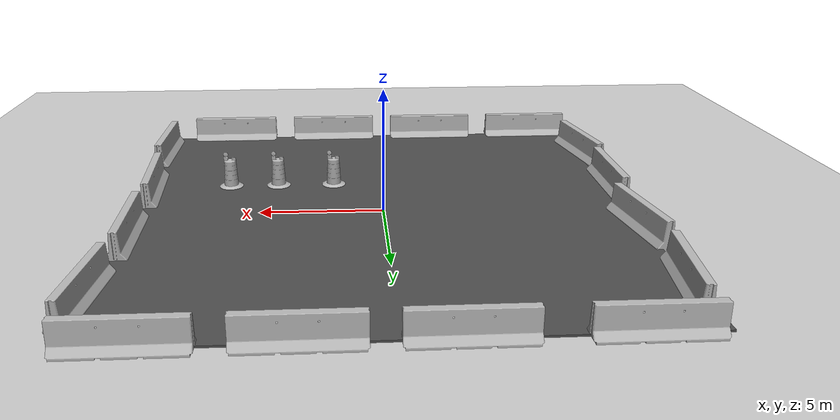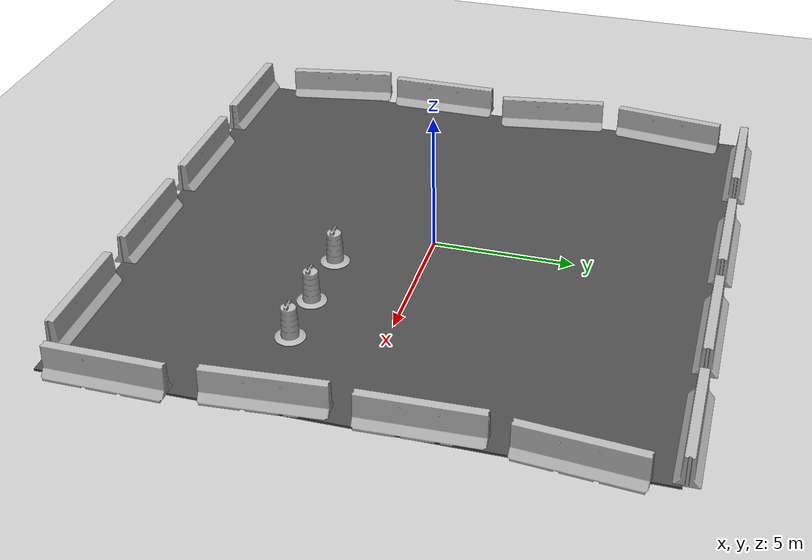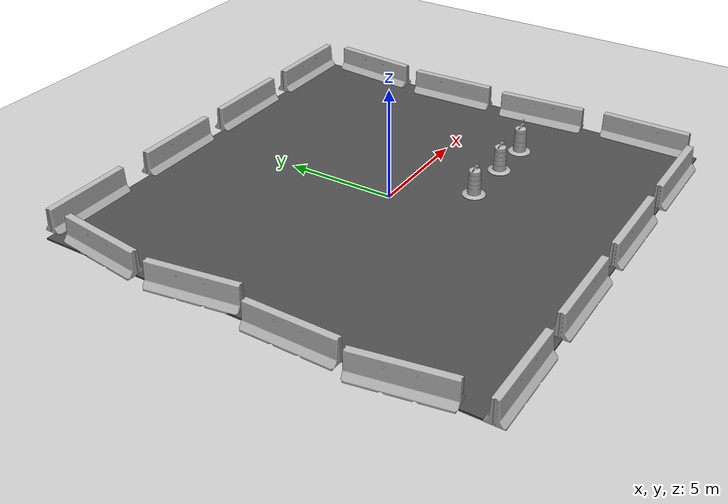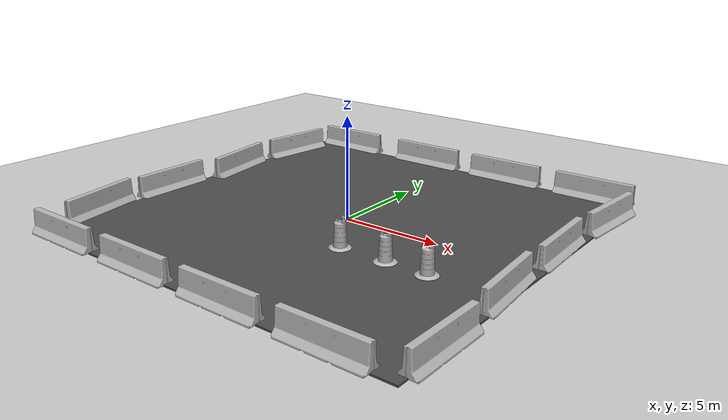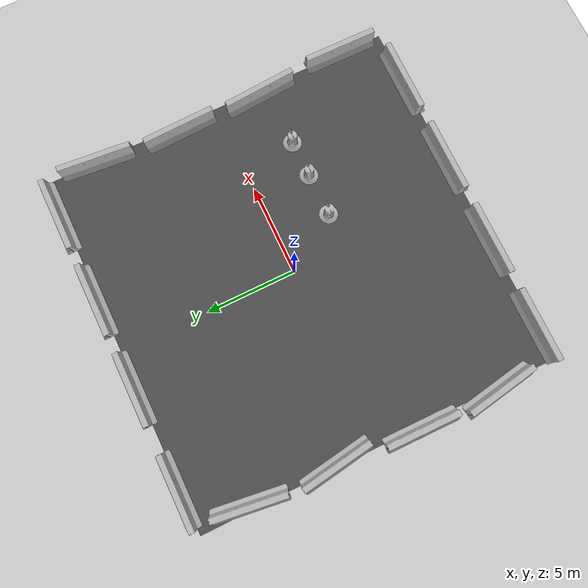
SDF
<sdf version="1.6">
 <world name="default">
  <light name="sun" type="directional">
   <pose>0 0 10 0 -0 0</pose>
   <diffuse>0.8 0.8 0.8 1</diffuse>
   <specular>0.2 0.2 0.2 1</specular>
   <attenuation>
    <range>1000</range>
    <constant>0.9</constant>
    <linear>0.01</linear>
    <quadratic>0.001</quadratic>
   </attenuation>
   <direction>-0.5 0.1 -0.9</direction>
  </light>
  <model name="ground_plane">
   <static>1</static>
   <link name="link">
    <collision name="collision">
     <geometry><plane><normal>0 0 1</normal><size>100 100</size></plane></geometry>
     <surface><friction><ode><mu>100</mu><mu2>50</mu2></ode></friction></surface>
    </collision>
    <visual name="visual">
     <cast_shadows>0</cast_shadows>
     <geometry><plane><normal>0 0 1</normal><size>100 100</size></plane></geometry>
     <material>
      <script><uri>file://media/materials/scripts/gazebo.material</uri><name>Gazebo/Grey</name></script>
     </material>
    </visual>
    <velocity_decay><linear>0</linear><angular>0</angular></velocity_decay>
   </link>
  </model>
  <physics name="default_physics" default="0" type="ode">
   <max_step_size>0.01</max_step_size>
   <real_time_factor>1</real_time_factor>
   <real_time_update_rate>100</real_time_update_rate>
  </physics>
  <scene><ambient>0.4 0.4 0.4 1</ambient><background>0.7 0.7 0.7 1</background><shadows>1</shadows></scene>
  <model name="jersey_barrier">
   <static>1</static>
   <link name="link">
    <visual name="visual">
     <geometry><mesh><uri>model://jersey_barrier/meshes/jersey_barrier.dae</uri></mesh></geometry>
    </visual>
    <collision name="upright">
     <pose>0 0 0.5715 0 -0 0</pose>
     <geometry><box><size>4.06542 0.3063 1.143</size></box></geometry>
    </collision>
    <collision name="base">
     <pose>0 0 0.032258 0 -0 0</pose>
     <geometry><box><size>4.06542 0.8107 0.064516</size></box></geometry>
    </collision>
    <collision name="base2">
     <pose>0 0 0.1 0 -0 0</pose>
     <geometry><box><size>4.06542 0.65 0.1</size></box></geometry>
    </collision>
    <collision name="base3">
     <pose>0 0 0.2 0 -0 0</pose>
     <geometry><box><size>4.06542 0.5 0.1</size></box></geometry>
    </collision>
    <collision name="left-angle">
     <pose>0 -0.224 0.2401 0.9 -0 0</pose>
     <geometry><box><size>4.06542 0.5 0.064516</size></box></geometry>
    </collision>
    <collision name="right-angle">
     <pose>0 0.224 0.2401 -0.9 0 0</pose>
     <geometry><box><size>4.06542 0.5 0.064516</size></box></geometry>
    </collision>
    <velocity_decay><linear>0</linear><angular>0</angular></velocity_decay>
   </link>
   <pose>-8 -10 0 0 -0 0</pose>
  </model>
  <model name="jersey_barrier_0">
   <static>1</static>
   <link name="link">
    <visual name="visual">
     <geometry><mesh><uri>model://jersey_barrier/meshes/jersey_barrier.dae</uri></mesh></geometry>
    </visual>
    <collision name="upright">
     <pose>0 0 0.5715 0 -0 0</pose>
     <geometry><box><size>4.06542 0.3063 1.143</size></box></geometry>
    </collision>
    <collision name="base">
     <pose>0 0 0.032258 0 -0 0</pose>
     <geometry><box><size>4.06542 0.8107 0.064516</size></box></geometry>
    </collision>
    <collision name="base2">
     <pose>0 0 0.1 0 -0 0</pose>
     <geometry><box><size>4.06542 0.65 0.1</size></box></geometry>
    </collision>
    <collision name="base3">
     <pose>0 0 0.2 0 -0 0</pose>
     <geometry><box><size>4.06542 0.5 0.1</size></box></geometry>
    </collision>
    <collision name="left-angle">
     <pose>0 -0.224 0.2401 0.9 -0 0</pose>
     <geometry><box><size>4.06542 0.5 0.064516</size></box></geometry>
    </collision>
    <collision name="right-angle">
     <pose>0 0.224 0.2401 -0.9 0 0</pose>
     <geometry><box><size>4.06542 0.5 0.064516</size></box></geometry>
    </collision>
    <velocity_decay><linear>0</linear><angular>0</angular></velocity_decay>
   </link>
   <pose>-3 -10 0 0 -0 0</pose>
  </model>
  <model name="jersey_barrier_1">
   <static>1</static>
   <link name="link">
    <visual name="visual">
     <geometry><mesh><uri>model://jersey_barrier/meshes/jersey_barrier.dae</uri></mesh></geometry>
    </visual>
    <collision name="upright">
     <pose>0 0 0.5715 0 -0 0</pose>
     <geometry><box><size>4.06542 0.3063 1.143</size></box></geometry>
    </collision>
    <collision name="base">
     <pose>0 0 0.032258 0 -0 0</pose>
     <geometry><box><size>4.06542 0.8107 0.064516</size></box></geometry>
    </collision>
    <collision name="base2">
     <pose>0 0 0.1 0 -0 0</pose>
     <geometry><box><size>4.06542 0.65 0.1</size></box></geometry>
    </collision>
    <collision name="base3">
     <pose>0 0 0.2 0 -0 0</pose>
     <geometry><box><size>4.06542 0.5 0.1</size></box></geometry>
    </collision>
    <collision name="left-angle">
     <pose>0 -0.224 0.2401 0.9 -0 0</pose>
     <geometry><box><size>4.06542 0.5 0.064516</size></box></geometry>
    </collision>
    <collision name="right-angle">
     <pose>0 0.224 0.2401 -0.9 0 0</pose>
     <geometry><box><size>4.06542 0.5 0.064516</size></box></geometry>
    </collision>
    <velocity_decay><linear>0</linear><angular>0</angular></velocity_decay>
   </link>
   <pose>2 -10 0 0 -0 0</pose>
  </model>
  <model name="jersey_barrier_2">
   <static>1</static>
   <link name="link">
    <visual name="visual">
     <geometry><mesh><uri>model://jersey_barrier/meshes/jersey_barrier.dae</uri></mesh></geometry>
    </visual>
    <collision name="upright">
     <pose>0 0 0.5715 0 -0 0</pose>
     <geometry><box><size>4.06542 0.3063 1.143</size></box></geometry>
    </collision>
    <collision name="base">
     <pose>0 0 0.032258 0 -0 0</pose>
     <geometry><box><size>4.06542 0.8107 0.064516</size></box></geometry>
    </collision>
    <collision name="base2">
     <pose>0 0 0.1 0 -0 0</pose>
     <geometry><box><size>4.06542 0.65 0.1</size></box></geometry>
    </collision>
    <collision name="base3">
     <pose>0 0 0.2 0 -0 0</pose>
     <geometry><box><size>4.06542 0.5 0.1</size></box></geometry>
    </collision>
    <collision name="left-angle">
     <pose>0 -0.224 0.2401 0.9 -0 0</pose>
     <geometry><box><size>4.06542 0.5 0.064516</size></box></geometry>
    </collision>
    <collision name="right-angle">
     <pose>0 0.224 0.2401 -0.9 0 0</pose>
     <geometry><box><size>4.06542 0.5 0.064516</size></box></geometry>
    </collision>
    <velocity_decay><linear>0</linear><angular>0</angular></velocity_decay>
   </link>
   <pose>7 -10 0 0 -0 0</pose>
  </model>
  <model name="jersey_barrier_3">
   <static>1</static>
   <link name="link">
    <visual name="visual">
     <geometry><mesh><uri>model://jersey_barrier/meshes/jersey_barrier.dae</uri></mesh></geometry>
    </visual>
    <collision name="upright">
     <pose>0 0 0.5715 0 -0 0</pose>
     <geometry><box><size>4.06542 0.3063 1.143</size></box></geometry>
    </collision>
    <collision name="base">
     <pose>0 0 0.032258 0 -0 0</pose>
     <geometry><box><size>4.06542 0.8107 0.064516</size></box></geometry>
    </collision>
    <collision name="base2">
     <pose>0 0 0.1 0 -0 0</pose>
     <geometry><box><size>4.06542 0.65 0.1</size></box></geometry>
    </collision>
    <collision name="base3">
     <pose>0 0 0.2 0 -0 0</pose>
     <geometry><box><size>4.06542 0.5 0.1</size></box></geometry>
    </collision>
    <collision name="left-angle">
     <pose>0 -0.224 0.2401 0.9 -0 0</pose>
     <geometry><box><size>4.06542 0.5 0.064516</size></box></geometry>
    </collision>
    <collision name="right-angle">
     <pose>0 0.224 0.2401 -0.9 0 0</pose>
     <geometry><box><size>4.06542 0.5 0.064516</size></box></geometry>
    </collision>
    <velocity_decay><linear>0</linear><angular>0</angular></velocity_decay>
   </link>
   <pose>-7.50675 10 0 0 -0 0</pose>
  </model>
  <model name="jersey_barrier_4">
   <static>1</static>
   <link name="link">
    <visual name="visual">
     <geometry><mesh><uri>model://jersey_barrier/meshes/jersey_barrier.dae</uri></mesh></geometry>
    </visual>
    <collision name="upright">
     <pose>0 0 0.5715 0 -0 0</pose>
     <geometry><box><size>4.06542 0.3063 1.143</size></box></geometry>
    </collision>
    <collision name="base">
     <pose>0 0 0.032258 0 -0 0</pose>
     <geometry><box><size>4.06542 0.8107 0.064516</size></box></geometry>
    </collision>
    <collision name="base2">
     <pose>0 0 0.1 0 -0 0</pose>
     <geometry><box><size>4.06542 0.65 0.1</size></box></geometry>
    </collision>
    <collision name="base3">
     <pose>0 0 0.2 0 -0 0</pose>
     <geometry><box><size>4.06542 0.5 0.1</size></box></geometry>
    </collision>
    <collision name="left-angle">
     <pose>0 -0.224 0.2401 0.9 -0 0</pose>
     <geometry><box><size>4.06542 0.5 0.064516</size></box></geometry>
    </collision>
    <collision name="right-angle">
     <pose>0 0.224 0.2401 -0.9 0 0</pose>
     <geometry><box><size>4.06542 0.5 0.064516</size></box></geometry>
    </collision>
    <velocity_decay><linear>0</linear><angular>0</angular></velocity_decay>
   </link>
   <pose>-2 10 0 0 -0 0</pose>
  </model>
  <model name="jersey_barrier_5">
   <static>1</static>
   <link name="link">
    <visual name="visual">
     <geometry><mesh><uri>model://jersey_barrier/meshes/jersey_barrier.dae</uri></mesh></geometry>
    </visual>
    <collision name="upright">
     <pose>0 0 0.5715 0 -0 0</pose>
     <geometry><box><size>4.06542 0.3063 1.143</size></box></geometry>
    </collision>
    <collision name="base">
     <pose>0 0 0.032258 0 -0 0</pose>
     <geometry><box><size>4.06542 0.8107 0.064516</size></box></geometry>
    </collision>
    <collision name="base2">
     <pose>0 0 0.1 0 -0 0</pose>
     <geometry><box><size>4.06542 0.65 0.1</size></box></geometry>
    </collision>
    <collision name="base3">
     <pose>0 0 0.2 0 -0 0</pose>
     <geometry><box><size>4.06542 0.5 0.1</size></box></geometry>
    </collision>
    <collision name="left-angle">
     <pose>0 -0.224 0.2401 0.9 -0 0</pose>
     <geometry><box><size>4.06542 0.5 0.064516</size></box></geometry>
    </collision>
    <collision name="right-angle">
     <pose>0 0.224 0.2401 -0.9 0 0</pose>
     <geometry><box><size>4.06542 0.5 0.064516</size></box></geometry>
    </collision>
    <velocity_decay><linear>0</linear><angular>0</angular></velocity_decay>
   </link>
   <pose>3 10 0 0 -0 0</pose>
  </model>
  <model name="jersey_barrier_6">
   <static>1</static>
   <link name="link">
    <visual name="visual">
     <geometry><mesh><uri>model://jersey_barrier/meshes/jersey_barrier.dae</uri></mesh></geometry>
    </visual>
    <collision name="upright">
     <pose>0 0 0.5715 0 -0 0</pose>
     <geometry><box><size>4.06542 0.3063 1.143</size></box></geometry>
    </collision>
    <collision name="base">
     <pose>0 0 0.032258 0 -0 0</pose>
     <geometry><box><size>4.06542 0.8107 0.064516</size></box></geometry>
    </collision>
    <collision name="base2">
     <pose>0 0 0.1 0 -0 0</pose>
     <geometry><box><size>4.06542 0.65 0.1</size></box></geometry>
    </collision>
    <collision name="base3">
     <pose>0 0 0.2 0 -0 0</pose>
     <geometry><box><size>4.06542 0.5 0.1</size></box></geometry>
    </collision>
    <collision name="left-angle">
     <pose>0 -0.224 0.2401 0.9 -0 0</pose>
     <geometry><box><size>4.06542 0.5 0.064516</size></box></geometry>
    </collision>
    <collision name="right-angle">
     <pose>0 0.224 0.2401 -0.9 0 0</pose>
     <geometry><box><size>4.06542 0.5 0.064516</size></box></geometry>
    </collision>
    <velocity_decay><linear>0</linear><angular>0</angular></velocity_decay>
   </link>
   <pose>8 10 0 0 -0 0</pose>
  </model>
  <model name="jersey_barrier_7">
   <static>1</static>
   <link name="link">
    <visual name="visual">
     <geometry><mesh><uri>model://jersey_barrier/meshes/jersey_barrier.dae</uri></mesh></geometry>
    </visual>
    <collision name="upright">
     <pose>0 0 0.5715 0 -0 0</pose>
     <geometry><box><size>4.06542 0.3063 1.143</size></box></geometry>
    </collision>
    <collision name="base">
     <pose>0 0 0.032258 0 -0 0</pose>
     <geometry><box><size>4.06542 0.8107 0.064516</size></box></geometry>
    </collision>
    <collision name="base2">
     <pose>0 0 0.1 0 -0 0</pose>
     <geometry><box><size>4.06542 0.65 0.1</size></box></geometry>
    </collision>
    <collision name="base3">
     <pose>0 0 0.2 0 -0 0</pose>
     <geometry><box><size>4.06542 0.5 0.1</size></box></geometry>
    </collision>
    <collision name="left-angle">
     <pose>0 -0.224 0.2401 0.9 -0 0</pose>
     <geometry><box><size>4.06542 0.5 0.064516</size></box></geometry>
    </collision>
    <collision name="right-angle">
     <pose>0 0.224 0.2401 -0.9 0 0</pose>
     <geometry><box><size>4.06542 0.5 0.064516</size></box></geometry>
    </collision>
    <velocity_decay><linear>0</linear><angular>0</angular></velocity_decay>
   </link>
   <pose>9.74902 -2.57759 0 0 -0 1.64</pose>
  </model>
  <model name="jersey_barrier_8">
   <static>1</static>
   <link name="link">
    <visual name="visual">
     <geometry><mesh><uri>model://jersey_barrier/meshes/jersey_barrier.dae</uri></mesh></geometry>
    </visual>
    <collision name="upright">
     <pose>0 0 0.5715 0 -0 0</pose>
     <geometry><box><size>4.06542 0.3063 1.143</size></box></geometry>
    </collision>
    <collision name="base">
     <pose>0 0 0.032258 0 -0 0</pose>
     <geometry><box><size>4.06542 0.8107 0.064516</size></box></geometry>
    </collision>
    <collision name="base2">
     <pose>0 0 0.1 0 -0 0</pose>
     <geometry><box><size>4.06542 0.65 0.1</size></box></geometry>
    </collision>
    <collision name="base3">
     <pose>0 0 0.2 0 -0 0</pose>
     <geometry><box><size>4.06542 0.5 0.1</size></box></geometry>
    </collision>
    <collision name="left-angle">
     <pose>0 -0.224 0.2401 0.9 -0 0</pose>
     <geometry><box><size>4.06542 0.5 0.064516</size></box></geometry>
    </collision>
    <collision name="right-angle">
     <pose>0 0.224 0.2401 -0.9 0 0</pose>
     <geometry><box><size>4.06542 0.5 0.064516</size></box></geometry>
    </collision>
    <velocity_decay><linear>0</linear><angular>0</angular></velocity_decay>
   </link>
   <pose>9.70141 2.24369 0 0 -0 1.6</pose>
  </model>
  <model name="jersey_barrier_9">
   <static>1</static>
   <link name="link">
    <visual name="visual">
     <geometry><mesh><uri>model://jersey_barrier/meshes/jersey_barrier.dae</uri></mesh></geometry>
    </visual>
    <collision name="upright">
     <pose>0 0 0.5715 0 -0 0</pose>
     <geometry><box><size>4.06542 0.3063 1.143</size></box></geometry>
    </collision>
    <collision name="base">
     <pose>0 0 0.032258 0 -0 0</pose>
     <geometry><box><size>4.06542 0.8107 0.064516</size></box></geometry>
    </collision>
    <collision name="base2">
     <pose>0 0 0.1 0 -0 0</pose>
     <geometry><box><size>4.06542 0.65 0.1</size></box></geometry>
    </collision>
    <collision name="base3">
     <pose>0 0 0.2 0 -0 0</pose>
     <geometry><box><size>4.06542 0.5 0.1</size></box></geometry>
    </collision>
    <collision name="left-angle">
     <pose>0 -0.224 0.2401 0.9 -0 0</pose>
     <geometry><box><size>4.06542 0.5 0.064516</size></box></geometry>
    </collision>
    <collision name="right-angle">
     <pose>0 0.224 0.2401 -0.9 0 0</pose>
     <geometry><box><size>4.06542 0.5 0.064516</size></box></geometry>
    </collision>
    <velocity_decay><linear>0</linear><angular>0</angular></velocity_decay>
   </link>
   <pose>-10.0607 -6.69856 0 0 0 -1.4</pose>
  </model>
  <model name="jersey_barrier_10">
   <static>1</static>
   <link name="link">
    <visual name="visual">
     <geometry><mesh><uri>model://jersey_barrier/meshes/jersey_barrier.dae</uri></mesh></geometry>
    </visual>
    <collision name="upright">
     <pose>0 0 0.5715 0 -0 0</pose>
     <geometry><box><size>4.06542 0.3063 1.143</size></box></geometry>
    </collision>
    <collision name="base">
     <pose>0 0 0.032258 0 -0 0</pose>
     <geometry><box><size>4.06542 0.8107 0.064516</size></box></geometry>
    </collision>
    <collision name="base2">
     <pose>0 0 0.1 0 -0 0</pose>
     <geometry><box><size>4.06542 0.65 0.1</size></box></geometry>
    </collision>
    <collision name="base3">
     <pose>0 0 0.2 0 -0 0</pose>
     <geometry><box><size>4.06542 0.5 0.1</size></box></geometry>
    </collision>
    <collision name="left-angle">
     <pose>0 -0.224 0.2401 0.9 -0 0</pose>
     <geometry><box><size>4.06542 0.5 0.064516</size></box></geometry>
    </collision>
    <collision name="right-angle">
     <pose>0 0.224 0.2401 -0.9 0 0</pose>
     <geometry><box><size>4.06542 0.5 0.064516</size></box></geometry>
    </collision>
    <velocity_decay><linear>0</linear><angular>0</angular></velocity_decay>
   </link>
   <pose>-10.0774 -2.27159 0 0 -0 1.56</pose>
  </model>
  <model name="jersey_barrier_11">
   <static>1</static>
   <link name="link">
    <visual name="visual">
     <geometry><mesh><uri>model://jersey_barrier/meshes/jersey_barrier.dae</uri></mesh></geometry>
    </visual>
    <collision name="upright">
     <pose>0 0 0.5715 0 -0 0</pose>
     <geometry><box><size>4.06542 0.3063 1.143</size></box></geometry>
    </collision>
    <collision name="base">
     <pose>0 0 0.032258 0 -0 0</pose>
     <geometry><box><size>4.06542 0.8107 0.064516</size></box></geometry>
    </collision>
    <collision name="base2">
     <pose>0 0 0.1 0 -0 0</pose>
     <geometry><box><size>4.06542 0.65 0.1</size></box></geometry>
    </collision>
    <collision name="base3">
     <pose>0 0 0.2 0 -0 0</pose>
     <geometry><box><size>4.06542 0.5 0.1</size></box></geometry>
    </collision>
    <collision name="left-angle">
     <pose>0 -0.224 0.2401 0.9 -0 0</pose>
     <geometry><box><size>4.06542 0.5 0.064516</size></box></geometry>
    </collision>
    <collision name="right-angle">
     <pose>0 0.224 0.2401 -0.9 0 0</pose>
     <geometry><box><size>4.06542 0.5 0.064516</size></box></geometry>
    </collision>
    <velocity_decay><linear>0</linear><angular>0</angular></velocity_decay>
   </link>
   <pose>-9.77013 2.34791 0 0 -0 1.72</pose>
  </model>
  <model name="jersey_barrier_12">
   <static>1</static>
   <link name="link">
    <visual name="visual">
     <geometry><mesh><uri>model://jersey_barrier/meshes/jersey_barrier.dae</uri></mesh></geometry>
    </visual>
    <collision name="upright">
     <pose>0 0 0.5715 0 -0 0</pose>
     <geometry><box><size>4.06542 0.3063 1.143</size></box></geometry>
    </collision>
    <collision name="base">
     <pose>0 0 0.032258 0 -0 0</pose>
     <geometry><box><size>4.06542 0.8107 0.064516</size></box></geometry>
    </collision>
    <collision name="base2">
     <pose>0 0 0.1 0 -0 0</pose>
     <geometry><box><size>4.06542 0.65 0.1</size></box></geometry>
    </collision>
    <collision name="base3">
     <pose>0 0 0.2 0 -0 0</pose>
     <geometry><box><size>4.06542 0.5 0.1</size></box></geometry>
    </collision>
    <collision name="left-angle">
     <pose>0 -0.224 0.2401 0.9 -0 0</pose>
     <geometry><box><size>4.06542 0.5 0.064516</size></box></geometry>
    </collision>
    <collision name="right-angle">
     <pose>0 0.224 0.2401 -0.9 0 0</pose>
     <geometry><box><size>4.06542 0.5 0.064516</size></box></geometry>
    </collision>
    <velocity_decay><linear>0</linear><angular>0</angular></velocity_decay>
   </link>
   <pose>10.0879 -7.62159 0 0 -0 1.56</pose>
  </model>
  <model name="jersey_barrier_13">
   <static>1</static>
   <link name="link">
    <visual name="visual">
     <geometry><mesh><uri>model://jersey_barrier/meshes/jersey_barrier.dae</uri></mesh></geometry>
    </visual>
    <collision name="upright">
     <pose>0 0 0.5715 0 -0 0</pose>
     <geometry><box><size>4.06542 0.3063 1.143</size></box></geometry>
    </collision>
    <collision name="base">
     <pose>0 0 0.032258 0 -0 0</pose>
     <geometry><box><size>4.06542 0.8107 0.064516</size></box></geometry>
    </collision>
    <collision name="base2">
     <pose>0 0 0.1 0 -0 0</pose>
     <geometry><box><size>4.06542 0.65 0.1</size></box></geometry>
    </collision>
    <collision name="base3">
     <pose>0 0 0.2 0 -0 0</pose>
     <geometry><box><size>4.06542 0.5 0.1</size></box></geometry>
    </collision>
    <collision name="left-angle">
     <pose>0 -0.224 0.2401 0.9 -0 0</pose>
     <geometry><box><size>4.06542 0.5 0.064516</size></box></geometry>
    </collision>
    <collision name="right-angle">
     <pose>0 0.224 0.2401 -0.9 0 0</pose>
     <geometry><box><size>4.06542 0.5 0.064516</size></box></geometry>
    </collision>
    <velocity_decay><linear>0</linear><angular>0</angular></velocity_decay>
   </link>
   <pose>10 7 0 0 -0 1.48</pose>
  </model>
  <model name="jersey_barrier_14">
   <static>1</static>
   <link name="link">
    <visual name="visual">
     <geometry><mesh><uri>model://jersey_barrier/meshes/jersey_barrier.dae</uri></mesh></geometry>
    </visual>
    <collision name="upright">
     <pose>0 0 0.5715 0 -0 0</pose>
     <geometry><box><size>4.06542 0.3063 1.143</size></box></geometry>
    </collision>
    <collision name="base">
     <pose>0 0 0.032258 0 -0 0</pose>
     <geometry><box><size>4.06542 0.8107 0.064516</size></box></geometry>
    </collision>
    <collision name="base2">
     <pose>0 0 0.1 0 -0 0</pose>
     <geometry><box><size>4.06542 0.65 0.1</size></box></geometry>
    </collision>
    <collision name="base3">
     <pose>0 0 0.2 0 -0 0</pose>
     <geometry><box><size>4.06542 0.5 0.1</size></box></geometry>
    </collision>
    <collision name="left-angle">
     <pose>0 -0.224 0.2401 0.9 -0 0</pose>
     <geometry><box><size>4.06542 0.5 0.064516</size></box></geometry>
    </collision>
    <collision name="right-angle">
     <pose>0 0.224 0.2401 -0.9 0 0</pose>
     <geometry><box><size>4.06542 0.5 0.064516</size></box></geometry>
    </collision>
    <velocity_decay><linear>0</linear><angular>0</angular></velocity_decay>
   </link>
   <pose>-9.64482 7.05946 0 0 -0 1.44</pose>
  </model>
  <model name="asphalt_plane">
   <static>1</static>
   <link name="link">
    <collision name="collision"><geometry><box><size>20 20 0.1</size></box></geometry></collision>
    <visual name="visual">
     <cast_shadows>0</cast_shadows>
     <geometry><box><size>20 20 0.1</size></box></geometry>
     <material>
      <script>
       <uri>model://asphalt_plane/materials/scripts</uri>
       <uri>model://asphalt_plane/materials/textures</uri>
       <name>vrc/asphalt</name>
      </script>
     </material>
    </visual>
    <velocity_decay><linear>0</linear><angular>0</angular></velocity_decay>
   </link>
   <pose>0.076733 -0.110379 0 0 -0 0</pose>
  </model>
  <spherical_coordinates>
   <surface_model>EARTH_WGS84</surface_model>
   <latitude_deg>0</latitude_deg>
   <longitude_deg>0</longitude_deg>
   <elevation>0</elevation>
   <heading_deg>0</heading_deg>
  </spherical_coordinates>
  <model name="Construction Barrel_2">
   <link name="link">
    <inertial>
     <pose>0 0 0.4 0 -0 0</pose>
     <mass>500</mass>
     <inertia><ixx>51.2096</ixx><iyy>51.2096</iyy><izz>25</izz><ixy>0</ixy><ixz>0</ixz><iyz>0</iyz></inertia>
    </inertial>
    <collision name="collision">
     <geometry><mesh><uri>model://construction_barrel/meshes/construction_barrel.dae</uri></mesh></geometry>
    </collision>
    <visual name="visual">
     <geometry><mesh><uri>model://construction_barrel/meshes/construction_barrel.dae</uri></mesh></geometry>
    </visual>
    <velocity_decay><linear>0</linear><angular>0</angular></velocity_decay>
   </link>
   <pose>2.00081 -2.99919 0.049893 -0.00021 -0.000392 -0.000181</pose>
   <static>0</static>
  </model>
  <model name="Construction Barrel_4">
   <link name="link">
    <inertial>
     <pose>0 0 0.4 0 -0 0</pose>
     <mass>500</mass>
     <inertia><ixx>51.2096</ixx><iyy>51.2096</iyy><izz>25</izz><ixy>0</ixy><ixz>0</ixz><iyz>0</iyz></inertia>
    </inertial>
    <collision name="collision">
     <geometry><mesh><uri>model://construction_barrel/meshes/construction_barrel.dae</uri></mesh></geometry>
    </collision>
    <visual name="visual">
     <geometry><mesh><uri>model://construction_barrel/meshes/construction_barrel.dae</uri></mesh></geometry>
    </visual>
    <velocity_decay><linear>0</linear><angular>0</angular></velocity_decay>
   </link>
   <pose>4.41136 -2.99921 0.049913 -0.00017 -0.000347 -0.00016</pose>
   <static>0</static>
  </model>
  <model name="Construction Barrel_5">
   <link name="link">
    <inertial>
     <pose>0 0 0.4 0 -0 0</pose>
     <mass>500</mass>
     <inertia><ixx>51.2096</ixx><iyy>51.2096</iyy><izz>25</izz><ixy>0</ixy><ixz>0</ixz><iyz>0</iyz></inertia>
    </inertial>
    <collision name="collision">
     <geometry><mesh><uri>model://construction_barrel/meshes/construction_barrel.dae</uri></mesh></geometry>
    </collision>
    <visual name="visual">
     <geometry><mesh><uri>model://construction_barrel/meshes/construction_barrel.dae</uri></mesh></geometry>
    </visual>
    <velocity_decay><linear>0</linear><angular>0</angular></velocity_decay>
   </link>
   <pose>6.46549 -2.99921 0.049898 0.000431 -1.9e-05 -0.000154</pose>
   <static>0</static>
  </model>
  <gravity>0 0 -9.8</gravity>
  <magnetic_field>6e-06 2.3e-05 -4.2e-05</magnetic_field>
  <atmosphere type="adiabatic"/>
 </world>
</sdf>
